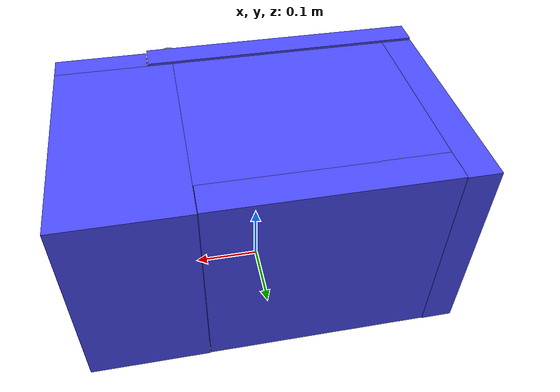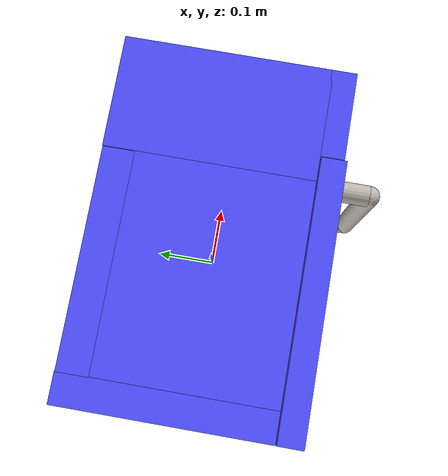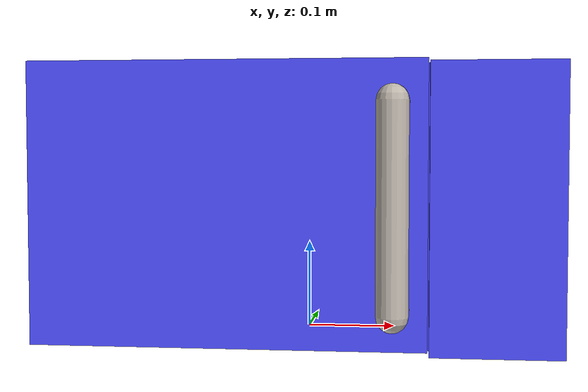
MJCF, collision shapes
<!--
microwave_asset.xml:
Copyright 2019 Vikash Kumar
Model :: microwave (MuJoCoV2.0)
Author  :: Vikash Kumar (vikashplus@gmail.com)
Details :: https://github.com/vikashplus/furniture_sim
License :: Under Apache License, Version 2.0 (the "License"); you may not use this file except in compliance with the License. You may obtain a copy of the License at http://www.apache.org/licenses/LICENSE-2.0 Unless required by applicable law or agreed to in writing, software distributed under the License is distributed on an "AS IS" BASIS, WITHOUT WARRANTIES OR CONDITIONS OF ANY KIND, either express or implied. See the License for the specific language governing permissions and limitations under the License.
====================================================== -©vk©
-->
<mujoco model="gray_microwave">
  <compiler angle="radian" autolimits="true" />
  <option cone="elliptic" impratio="10" />
  <include file="./assets/microwave/microwave_asset.xml" />
  <worldbody>
    <body name="gray_microwave_body" childclass="microwave">
      <inertial pos="0 0 0.1496" quat="1 0 0 0" mass="1000" diaginertia="0.373 0.770 0.793" />
      <geom class="visual" mesh="micro" />
      <geom class="visual" material="micro_metal" mesh="microbutton" />
      <geom class="visual" material="micro_metal" mesh="microfeet" />
      <site type="sphere" name="placement_site" quat="0.7071068 0 0 -0.7071068" pos="-0.064 0 0.032" size="0.016" group="0" rgba="1 1 0 1" />
      <geom class="collision" pos="-0.2528 0.0184 0.1496" size="0.0232 0.1592 0.1496" type="box" mass=".5" />
      <geom class="collision" pos="0.1888 0.0184 0.1496" size="0.0872 0.1592 0.1496" type="box" mass=".5" />
      <geom class="collision" pos="-0.0648 0.1528 0.1496" size="0.1656 0.024 0.1496" type="box" mass=".5" />
      <geom class="collision" pos="-0.064 -0.0056 0.284" size="0.1656 0.1352 0.0152" type="box" mass=".5" />
      <geom class="collision" pos="-0.064 -0.0064 0.0192" size="0.1656 0.1344 0.0192" type="box" mass=".5" />
      <geom class="collision" pos="0.208 -0.1576 0.1496" size="0.068 0.0192 0.1496" type="box" mass=".5" />
      <body name="microdoorroot" pos="-0.276 -0.1408 0.1536">
        <joint axis="0 0 1" limited="true" name="door_joint" range="-2.094 0" springref="0" stiffness="4" />
        <inertial pos="0.192 -0.0208 0" quat="1 0 0 0" mass="0.3" diaginertia="0.0151 0.0442 0.0293" />
        <geom class="visual" mesh="microdoor" pos="0.276 0.1408 -0.1536" />
        <geom class="visual" material="micro_window" mesh="microwindow" pos="0.276 0.1408 -0.1536" />
        <geom class="visual" material="micro_metal" pos="0.38 -0.0864 0" size="0.016 0.104" type="capsule" />
        <geom class="visual" material="micro_metal" euler="1.57 0 0" pos="0.38 -0.06 0.104" size="0.016 0.024" type="capsule" />
        <geom class="visual" material="micro_metal" euler="1.57 0 0" pos="0.38 -0.06 -0.104" size="0.016 0.024" type="capsule" />
        <geom class="collision" pos="0.38 -0.0864 0" size="0.016 0.104" type="capsule" mass="0.020" />
        <geom class="collision" euler="1.57 0 0" pos="0.38 -0.06 0.104" size="0.016 0.024" type="capsule" mass="0.020" />
        <geom class="collision" euler="1.57 0 0" pos="0.38 -0.06 -0.104" size="0.016 0.024" type="capsule" mass="0.020" />
        <geom class="collision" pos="0.2072 -0.0208 0" size="0.2072 0.0192 0.148" type="box" mass="0.20" />
        <site type="sphere" name="microhandle_site" pos="0.38 -0.0864 0" size="0.008" group="3" rgba="1 1 0 1" />
      </body>
    </body>
  </worldbody>
</mujoco>

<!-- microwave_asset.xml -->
<mujocoinclude>

    <compiler meshdir="./" texturedir="./" inertiagrouprange="4 4" angle="radian"/>

    <asset>
        <mesh scale="0.8 0.8 0.8" file="micro.stl" name="micro"/>
        <mesh scale="0.8 0.8 0.8" file="microdoor.stl" name="microdoor"/>
        <mesh scale="0.8 0.8 0.8" file="microbutton.stl" name="microbutton"/>
        <mesh scale="0.8 0.8 0.8" file="microfeet.stl" name="microfeet"/>
        <mesh scale="0.8 0.8 0.8" file="microhandle.stl" name="microhandle"/>
        <mesh scale="0.8 0.8 0.8" file="microwindow.stl" name="microwindow"/>

        <texture name="T_micro_metal" type="cube" height="1" width="1" file="metal0.png"/>

        <material name="micro_metal" rgba="1 1 1 1" texture="T_micro_metal" texrepeat="3 3" reflectance="1" shininess="1" texuniform="false"/>
        <material name="micro_black" rgba=".2 .2 .2 1" reflectance="1" shininess="1"/>
        <material name="micro_white" rgba=".8 .8 .82 1" reflectance="1" shininess="1"/>
        <material name="micro_window" rgba=".4 .4 .4 .25" reflectance="1" shininess="1"/>
        <material name="micro_collision_blue" rgba="0.3 0.3 1.0 0.5" shininess="0" specular="0"/>
    </asset>

    <default>
        <default class="microwave">
            <joint damping="2" frictionloss="2" armature=".01" limited="true"/>
            <default class="visual">
                <geom type="mesh" group="2" contype="0" conaffinity="0" material="micro_black"/>
            </default>
            <default class="collision">
                <geom type="mesh" condim="3" group="3" margin="0.001" material="micro_collision_blue" solimp=".8 .9 .01" solref=".02 1"/>
            </default>
        </default>
    </default>

</mujocoinclude>
